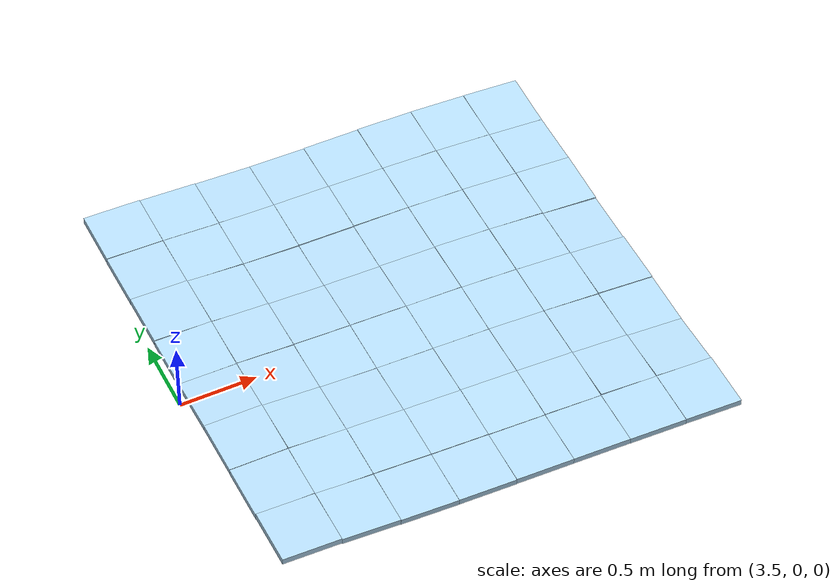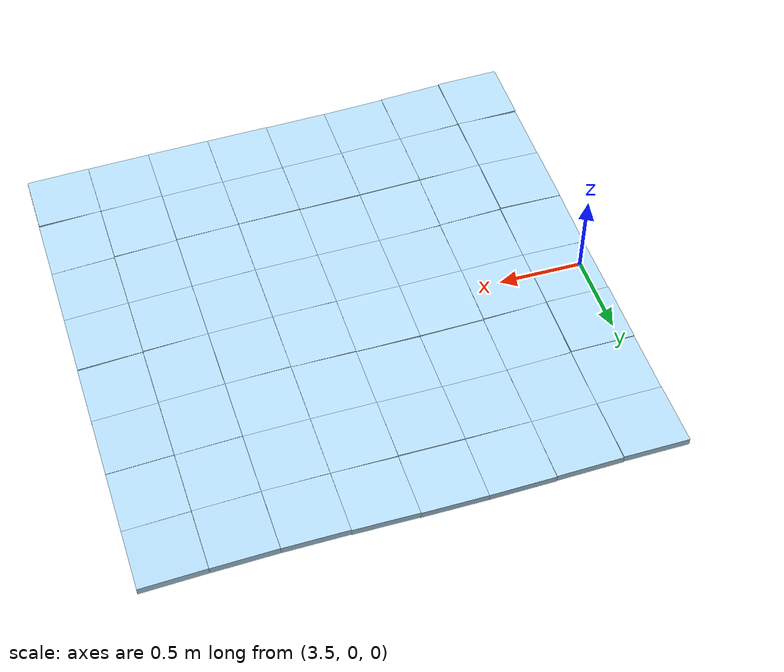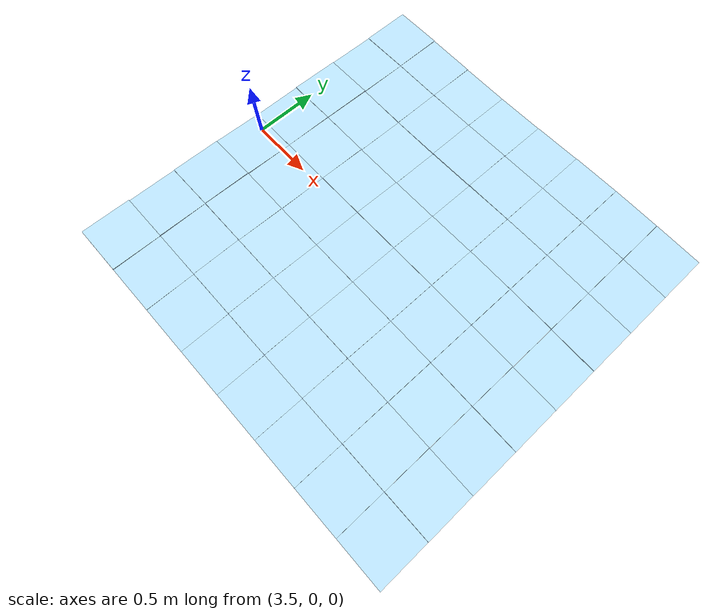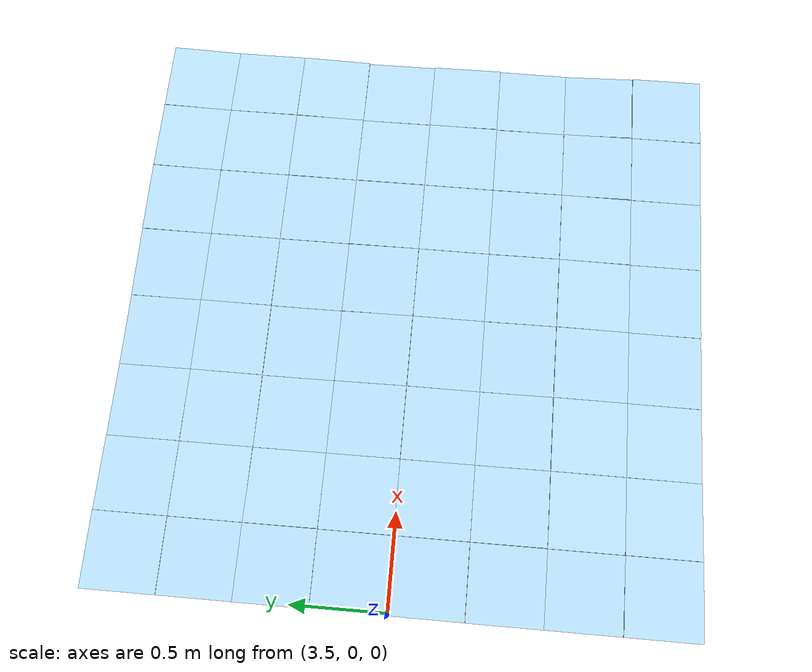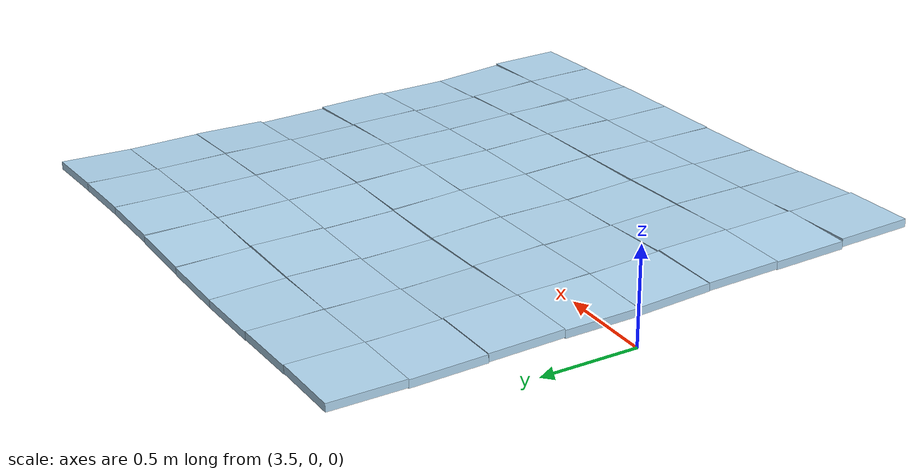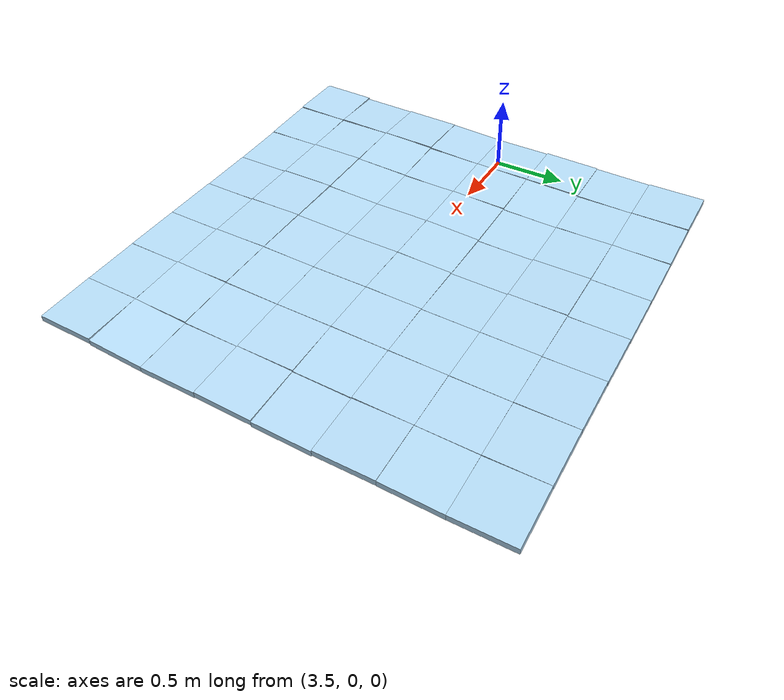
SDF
<sdf version="1.8">
 <world name="default">
  <model name="slip_patch_0">
   <static>true</static>
   <link name="t_0_0">
    <pose>3.6875 -1.3125 0.2237 -0.02698 0.03791 0</pose>
    <collision name="collision">
     <geometry><box><size>0.3750 0.3750 0.04</size></box></geometry>
     <surface><friction><ode><mu>0.3</mu><mu2>0.3</mu2></ode></friction></surface>
    </collision>
    <visual name="visual">
     <geometry><box><size>0.3750 0.3750 0.04</size></box></geometry>
     <material>
      <ambient>0.62 0.76 0.85 1</ambient>
      <diffuse>0.70 0.85 0.95 1</diffuse>
      <specular>0.9 0.9 0.9 1</specular>
     </material>
    </visual>
   </link>
   <link name="t_0_1">
    <pose>3.6875 -0.9375 0.2101 -0.02581 -0.00199 0</pose>
    <collision name="collision">
     <geometry><box><size>0.3750 0.3750 0.04</size></box></geometry>
     <surface><friction><ode><mu>0.3</mu><mu2>0.3</mu2></ode></friction></surface>
    </collision>
    <visual name="visual">
     <geometry><box><size>0.3750 0.3750 0.04</size></box></geometry>
     <material>
      <ambient>0.62 0.76 0.85 1</ambient>
      <diffuse>0.70 0.85 0.95 1</diffuse>
      <specular>0.9 0.9 0.9 1</specular>
     </material>
    </visual>
   </link>
   <link name="t_0_2">
    <pose>3.6875 -0.5625 0.2039 -0.02700 -0.00079 0</pose>
    <collision name="collision">
     <geometry><box><size>0.3750 0.3750 0.04</size></box></geometry>
     <surface><friction><ode><mu>0.3</mu><mu2>0.3</mu2></ode></friction></surface>
    </collision>
    <visual name="visual">
     <geometry><box><size>0.3750 0.3750 0.04</size></box></geometry>
     <material>
      <ambient>0.62 0.76 0.85 1</ambient>
      <diffuse>0.70 0.85 0.95 1</diffuse>
      <specular>0.9 0.9 0.9 1</specular>
     </material>
    </visual>
   </link>
   <link name="t_0_3">
    <pose>3.6875 -0.1875 0.1853 -0.05277 0.00854 0</pose>
    <collision name="collision">
     <geometry><box><size>0.3750 0.3750 0.04</size></box></geometry>
     <surface><friction><ode><mu>0.3</mu><mu2>0.3</mu2></ode></friction></surface>
    </collision>
    <visual name="visual">
     <geometry><box><size>0.3750 0.3750 0.04</size></box></geometry>
     <material>
      <ambient>0.62 0.76 0.85 1</ambient>
      <diffuse>0.70 0.85 0.95 1</diffuse>
      <specular>0.9 0.9 0.9 1</specular>
     </material>
    </visual>
   </link>
   <link name="t_0_4">
    <pose>3.6875 0.1875 0.1733 -0.01191 0.00159 0</pose>
    <collision name="collision">
     <geometry><box><size>0.3750 0.3750 0.04</size></box></geometry>
     <surface><friction><ode><mu>0.3</mu><mu2>0.3</mu2></ode></friction></surface>
    </collision>
    <visual name="visual">
     <geometry><box><size>0.3750 0.3750 0.04</size></box></geometry>
     <material>
      <ambient>0.62 0.76 0.85 1</ambient>
      <diffuse>0.70 0.85 0.95 1</diffuse>
      <specular>0.9 0.9 0.9 1</specular>
     </material>
    </visual>
   </link>
   <link name="t_0_5">
    <pose>3.6875 0.5625 0.1686 -0.02680 0.02184 0</pose>
    <collision name="collision">
     <geometry><box><size>0.3750 0.3750 0.04</size></box></geometry>
     <surface><friction><ode><mu>0.3</mu><mu2>0.3</mu2></ode></friction></surface>
    </collision>
    <visual name="visual">
     <geometry><box><size>0.3750 0.3750 0.04</size></box></geometry>
     <material>
      <ambient>0.62 0.76 0.85 1</ambient>
      <diffuse>0.70 0.85 0.95 1</diffuse>
      <specular>0.9 0.9 0.9 1</specular>
     </material>
    </visual>
   </link>
   <link name="t_0_6">
    <pose>3.6875 0.9375 0.1546 -0.02481 0.02184 0</pose>
    <collision name="collision">
     <geometry><box><size>0.3750 0.3750 0.04</size></box></geometry>
     <surface><friction><ode><mu>0.3</mu><mu2>0.3</mu2></ode></friction></surface>
    </collision>
    <visual name="visual">
     <geometry><box><size>0.3750 0.3750 0.04</size></box></geometry>
     <material>
      <ambient>0.62 0.76 0.85 1</ambient>
      <diffuse>0.70 0.85 0.95 1</diffuse>
      <specular>0.9 0.9 0.9 1</specular>
     </material>
    </visual>
   </link>
   <link name="t_0_7">
    <pose>3.6875 1.3125 0.1533 -0.00119 0.02601 0</pose>
    <collision name="collision">
     <geometry><box><size>0.3750 0.3750 0.04</size></box></geometry>
     <surface><friction><ode><mu>0.3</mu><mu2>0.3</mu2></ode></friction></surface>
    </collision>
    <visual name="visual">
     <geometry><box><size>0.3750 0.3750 0.04</size></box></geometry>
     <material>
      <ambient>0.62 0.76 0.85 1</ambient>
      <diffuse>0.70 0.85 0.95 1</diffuse>
      <specular>0.9 0.9 0.9 1</specular>
     </material>
    </visual>
   </link>
   <link name="t_1_0">
    <pose>4.0625 -1.3125 0.2005 -0.00990 0.06939 0</pose>
    <collision name="collision">
     <geometry><box><size>0.3750 0.3750 0.04</size></box></geometry>
     <surface><friction><ode><mu>0.3</mu><mu2>0.3</mu2></ode></friction></surface>
    </collision>
    <visual name="visual">
     <geometry><box><size>0.3750 0.3750 0.04</size></box></geometry>
     <material>
      <ambient>0.62 0.76 0.85 1</ambient>
      <diffuse>0.70 0.85 0.95 1</diffuse>
      <specular>0.9 0.9 0.9 1</specular>
     </material>
    </visual>
   </link>
   <link name="t_1_1">
    <pose>4.0625 -0.9375 0.1983 -0.00496 0.04465 0</pose>
    <collision name="collision">
     <geometry><box><size>0.3750 0.3750 0.04</size></box></geometry>
     <surface><friction><ode><mu>0.3</mu><mu2>0.3</mu2></ode></friction></surface>
    </collision>
    <visual name="visual">
     <geometry><box><size>0.3750 0.3750 0.04</size></box></geometry>
     <material>
      <ambient>0.62 0.76 0.85 1</ambient>
      <diffuse>0.70 0.85 0.95 1</diffuse>
      <specular>0.9 0.9 0.9 1</specular>
     </material>
    </visual>
   </link>
   <link name="t_1_2">
    <pose>4.0625 -0.5625 0.1890 -0.04357 0.06346 0</pose>
    <collision name="collision">
     <geometry><box><size>0.3750 0.3750 0.04</size></box></geometry>
     <surface><friction><ode><mu>0.3</mu><mu2>0.3</mu2></ode></friction></surface>
    </collision>
    <visual name="visual">
     <geometry><box><size>0.3750 0.3750 0.04</size></box></geometry>
     <material>
      <ambient>0.62 0.76 0.85 1</ambient>
      <diffuse>0.70 0.85 0.95 1</diffuse>
      <specular>0.9 0.9 0.9 1</specular>
     </material>
    </visual>
   </link>
   <link name="t_1_3">
    <pose>4.0625 -0.1875 0.1717 -0.03271 0.05258 0</pose>
    <collision name="collision">
     <geometry><box><size>0.3750 0.3750 0.04</size></box></geometry>
     <surface><friction><ode><mu>0.3</mu><mu2>0.3</mu2></ode></friction></surface>
    </collision>
    <visual name="visual">
     <geometry><box><size>0.3750 0.3750 0.04</size></box></geometry>
     <material>
      <ambient>0.62 0.76 0.85 1</ambient>
      <diffuse>0.70 0.85 0.95 1</diffuse>
      <specular>0.9 0.9 0.9 1</specular>
     </material>
    </visual>
   </link>
   <link name="t_1_4">
    <pose>4.0625 0.1875 0.1630 -0.03173 0.04762 0</pose>
    <collision name="collision">
     <geometry><box><size>0.3750 0.3750 0.04</size></box></geometry>
     <surface><friction><ode><mu>0.3</mu><mu2>0.3</mu2></ode></friction></surface>
    </collision>
    <visual name="visual">
     <geometry><box><size>0.3750 0.3750 0.04</size></box></geometry>
     <material>
      <ambient>0.62 0.76 0.85 1</ambient>
      <diffuse>0.70 0.85 0.95 1</diffuse>
      <specular>0.9 0.9 0.9 1</specular>
     </material>
    </visual>
   </link>
   <link name="t_1_5">
    <pose>4.0625 0.5625 0.1471 -0.03860 0.07236 0</pose>
    <collision name="collision">
     <geometry><box><size>0.3750 0.3750 0.04</size></box></geometry>
     <surface><friction><ode><mu>0.3</mu><mu2>0.3</mu2></ode></friction></surface>
    </collision>
    <visual name="visual">
     <geometry><box><size>0.3750 0.3750 0.04</size></box></geometry>
     <material>
      <ambient>0.62 0.76 0.85 1</ambient>
      <diffuse>0.70 0.85 0.95 1</diffuse>
      <specular>0.9 0.9 0.9 1</specular>
     </material>
    </visual>
   </link>
   <link name="t_1_6">
    <pose>4.0625 0.9375 0.1394 -0.00992 0.04960 0</pose>
    <collision name="collision">
     <geometry><box><size>0.3750 0.3750 0.04</size></box></geometry>
     <surface><friction><ode><mu>0.3</mu><mu2>0.3</mu2></ode></friction></surface>
    </collision>
    <visual name="visual">
     <geometry><box><size>0.3750 0.3750 0.04</size></box></geometry>
     <material>
      <ambient>0.62 0.76 0.85 1</ambient>
      <diffuse>0.70 0.85 0.95 1</diffuse>
      <specular>0.9 0.9 0.9 1</specular>
     </material>
    </visual>
   </link>
   <link name="t_1_7">
    <pose>4.0625 1.3125 0.1366 -0.01190 0.04861 0</pose>
    <collision name="collision">
     <geometry><box><size>0.3750 0.3750 0.04</size></box></geometry>
     <surface><friction><ode><mu>0.3</mu><mu2>0.3</mu2></ode></friction></surface>
    </collision>
    <visual name="visual">
     <geometry><box><size>0.3750 0.3750 0.04</size></box></geometry>
     <material>
      <ambient>0.62 0.76 0.85 1</ambient>
      <diffuse>0.70 0.85 0.95 1</diffuse>
      <specular>0.9 0.9 0.9 1</specular>
     </material>
    </visual>
   </link>
   <link name="t_2_0">
    <pose>4.4375 -1.3125 0.1764 0.00516 0.05495 0</pose>
    <collision name="collision">
     <geometry><box><size>0.3750 0.3750 0.04</size></box></geometry>
     <surface><friction><ode><mu>0.3</mu><mu2>0.3</mu2></ode></friction></surface>
    </collision>
    <visual name="visual">
     <geometry><box><size>0.3750 0.3750 0.04</size></box></geometry>
     <material>
      <ambient>0.62 0.76 0.85 1</ambient>
      <diffuse>0.70 0.85 0.95 1</diffuse>
      <specular>0.9 0.9 0.9 1</specular>
     </material>
    </visual>
   </link>
   <link name="t_2_1">
    <pose>4.4375 -0.9375 0.1813 -0.00496 0.04960 0</pose>
    <collision name="collision">
     <geometry><box><size>0.3750 0.3750 0.04</size></box></geometry>
     <surface><friction><ode><mu>0.3</mu><mu2>0.3</mu2></ode></friction></surface>
    </collision>
    <visual name="visual">
     <geometry><box><size>0.3750 0.3750 0.04</size></box></geometry>
     <material>
      <ambient>0.62 0.76 0.85 1</ambient>
      <diffuse>0.70 0.85 0.95 1</diffuse>
      <specular>0.9 0.9 0.9 1</specular>
     </material>
    </visual>
   </link>
   <link name="t_2_2">
    <pose>4.4375 -0.5625 0.1667 -0.05172 0.04980 0</pose>
    <collision name="collision">
     <geometry><box><size>0.3750 0.3750 0.04</size></box></geometry>
     <surface><friction><ode><mu>0.3</mu><mu2>0.3</mu2></ode></friction></surface>
    </collision>
    <visual name="visual">
     <geometry><box><size>0.3750 0.3750 0.04</size></box></geometry>
     <material>
      <ambient>0.62 0.76 0.85 1</ambient>
      <diffuse>0.70 0.85 0.95 1</diffuse>
      <specular>0.9 0.9 0.9 1</specular>
     </material>
    </visual>
   </link>
   <link name="t_2_3">
    <pose>4.4375 -0.1875 0.1548 -0.01052 0.03434 0</pose>
    <collision name="collision">
     <geometry><box><size>0.3750 0.3750 0.04</size></box></geometry>
     <surface><friction><ode><mu>0.3</mu><mu2>0.3</mu2></ode></friction></surface>
    </collision>
    <visual name="visual">
     <geometry><box><size>0.3750 0.3750 0.04</size></box></geometry>
     <material>
      <ambient>0.62 0.76 0.85 1</ambient>
      <diffuse>0.70 0.85 0.95 1</diffuse>
      <specular>0.9 0.9 0.9 1</specular>
     </material>
    </visual>
   </link>
   <link name="t_2_4">
    <pose>4.4375 0.1875 0.1459 -0.04957 0.03672 0</pose>
    <collision name="collision">
     <geometry><box><size>0.3750 0.3750 0.04</size></box></geometry>
     <surface><friction><ode><mu>0.3</mu><mu2>0.3</mu2></ode></friction></surface>
    </collision>
    <visual name="visual">
     <geometry><box><size>0.3750 0.3750 0.04</size></box></geometry>
     <material>
      <ambient>0.62 0.76 0.85 1</ambient>
      <diffuse>0.70 0.85 0.95 1</diffuse>
      <specular>0.9 0.9 0.9 1</specular>
     </material>
    </visual>
   </link>
   <link name="t_2_5">
    <pose>4.4375 0.5625 0.1252 -0.02936 0.04267 0</pose>
    <collision name="collision">
     <geometry><box><size>0.3750 0.3750 0.04</size></box></geometry>
     <surface><friction><ode><mu>0.3</mu><mu2>0.3</mu2></ode></friction></surface>
    </collision>
    <visual name="visual">
     <geometry><box><size>0.3750 0.3750 0.04</size></box></geometry>
     <material>
      <ambient>0.62 0.76 0.85 1</ambient>
      <diffuse>0.70 0.85 0.95 1</diffuse>
      <specular>0.9 0.9 0.9 1</specular>
     </material>
    </visual>
   </link>
   <link name="t_2_6">
    <pose>4.4375 0.9375 0.1251 0.00496 0.02581 0</pose>
    <collision name="collision">
     <geometry><box><size>0.3750 0.3750 0.04</size></box></geometry>
     <surface><friction><ode><mu>0.3</mu><mu2>0.3</mu2></ode></friction></surface>
    </collision>
    <visual name="visual">
     <geometry><box><size>0.3750 0.3750 0.04</size></box></geometry>
     <material>
      <ambient>0.62 0.76 0.85 1</ambient>
      <diffuse>0.70 0.85 0.95 1</diffuse>
      <specular>0.9 0.9 0.9 1</specular>
     </material>
    </visual>
   </link>
   <link name="t_2_7">
    <pose>4.4375 1.3125 0.1189 -0.02817 0.04009 0</pose>
    <collision name="collision">
     <geometry><box><size>0.3750 0.3750 0.04</size></box></geometry>
     <surface><friction><ode><mu>0.3</mu><mu2>0.3</mu2></ode></friction></surface>
    </collision>
    <visual name="visual">
     <geometry><box><size>0.3750 0.3750 0.04</size></box></geometry>
     <material>
      <ambient>0.62 0.76 0.85 1</ambient>
      <diffuse>0.70 0.85 0.95 1</diffuse>
      <specular>0.9 0.9 0.9 1</specular>
     </material>
    </visual>
   </link>
   <link name="t_3_0">
    <pose>4.8125 -1.3125 0.1592 -0.00000 0.03870 0</pose>
    <collision name="collision">
     <geometry><box><size>0.3750 0.3750 0.04</size></box></geometry>
     <surface><friction><ode><mu>0.3</mu><mu2>0.3</mu2></ode></friction></surface>
    </collision>
    <visual name="visual">
     <geometry><box><size>0.3750 0.3750 0.04</size></box></geometry>
     <material>
      <ambient>0.62 0.76 0.85 1</ambient>
      <diffuse>0.70 0.85 0.95 1</diffuse>
      <specular>0.9 0.9 0.9 1</specular>
     </material>
    </visual>
   </link>
   <link name="t_3_1">
    <pose>4.8125 -0.9375 0.1639 -0.00099 0.04069 0</pose>
    <collision name="collision">
     <geometry><box><size>0.3750 0.3750 0.04</size></box></geometry>
     <surface><friction><ode><mu>0.3</mu><mu2>0.3</mu2></ode></friction></surface>
    </collision>
    <visual name="visual">
     <geometry><box><size>0.3750 0.3750 0.04</size></box></geometry>
     <material>
      <ambient>0.62 0.76 0.85 1</ambient>
      <diffuse>0.70 0.85 0.95 1</diffuse>
      <specular>0.9 0.9 0.9 1</specular>
     </material>
    </visual>
   </link>
   <link name="t_3_2">
    <pose>4.8125 -0.5625 0.1520 -0.03710 0.02938 0</pose>
    <collision name="collision">
     <geometry><box><size>0.3750 0.3750 0.04</size></box></geometry>
     <surface><friction><ode><mu>0.3</mu><mu2>0.3</mu2></ode></friction></surface>
    </collision>
    <visual name="visual">
     <geometry><box><size>0.3750 0.3750 0.04</size></box></geometry>
     <material>
      <ambient>0.62 0.76 0.85 1</ambient>
      <diffuse>0.70 0.85 0.95 1</diffuse>
      <specular>0.9 0.9 0.9 1</specular>
     </material>
    </visual>
   </link>
   <link name="t_3_3">
    <pose>4.8125 -0.1875 0.1447 -0.00615 0.02402 0</pose>
    <collision name="collision">
     <geometry><box><size>0.3750 0.3750 0.04</size></box></geometry>
     <surface><friction><ode><mu>0.3</mu><mu2>0.3</mu2></ode></friction></surface>
    </collision>
    <visual name="visual">
     <geometry><box><size>0.3750 0.3750 0.04</size></box></geometry>
     <material>
      <ambient>0.62 0.76 0.85 1</ambient>
      <diffuse>0.70 0.85 0.95 1</diffuse>
      <specular>0.9 0.9 0.9 1</specular>
     </material>
    </visual>
   </link>
   <link name="t_3_4">
    <pose>4.8125 0.1875 0.1353 -0.05197 0.02323 0</pose>
    <collision name="collision">
     <geometry><box><size>0.3750 0.3750 0.04</size></box></geometry>
     <surface><friction><ode><mu>0.3</mu><mu2>0.3</mu2></ode></friction></surface>
    </collision>
    <visual name="visual">
     <geometry><box><size>0.3750 0.3750 0.04</size></box></geometry>
     <material>
      <ambient>0.62 0.76 0.85 1</ambient>
      <diffuse>0.70 0.85 0.95 1</diffuse>
      <specular>0.9 0.9 0.9 1</specular>
     </material>
    </visual>
   </link>
   <link name="t_3_5">
    <pose>4.8125 0.5625 0.1161 -0.01926 0.00735 0</pose>
    <collision name="collision">
     <geometry><box><size>0.3750 0.3750 0.04</size></box></geometry>
     <surface><friction><ode><mu>0.3</mu><mu2>0.3</mu2></ode></friction></surface>
    </collision>
    <visual name="visual">
     <geometry><box><size>0.3750 0.3750 0.04</size></box></geometry>
     <material>
      <ambient>0.62 0.76 0.85 1</ambient>
      <diffuse>0.70 0.85 0.95 1</diffuse>
      <specular>0.9 0.9 0.9 1</specular>
     </material>
    </visual>
   </link>
   <link name="t_3_6">
    <pose>4.8125 0.9375 0.1195 0.00099 0.00993 0</pose>
    <collision name="collision">
     <geometry><box><size>0.3750 0.3750 0.04</size></box></geometry>
     <surface><friction><ode><mu>0.3</mu><mu2>0.3</mu2></ode></friction></surface>
    </collision>
    <visual name="visual">
     <geometry><box><size>0.3750 0.3750 0.04</size></box></geometry>
     <material>
      <ambient>0.62 0.76 0.85 1</ambient>
      <diffuse>0.70 0.85 0.95 1</diffuse>
      <specular>0.9 0.9 0.9 1</specular>
     </material>
    </visual>
   </link>
   <link name="t_3_7">
    <pose>4.8125 1.3125 0.1085 -0.02581 0.01489 0</pose>
    <collision name="collision">
     <geometry><box><size>0.3750 0.3750 0.04</size></box></geometry>
     <surface><friction><ode><mu>0.3</mu><mu2>0.3</mu2></ode></friction></surface>
    </collision>
    <visual name="visual">
     <geometry><box><size>0.3750 0.3750 0.04</size></box></geometry>
     <material>
      <ambient>0.62 0.76 0.85 1</ambient>
      <diffuse>0.70 0.85 0.95 1</diffuse>
      <specular>0.9 0.9 0.9 1</specular>
     </material>
    </visual>
   </link>
   <link name="t_4_0">
    <pose>5.1875 -1.3125 0.1458 -0.01290 0.03474 0</pose>
    <collision name="collision">
     <geometry><box><size>0.3750 0.3750 0.04</size></box></geometry>
     <surface><friction><ode><mu>0.3</mu><mu2>0.3</mu2></ode></friction></surface>
    </collision>
    <visual name="visual">
     <geometry><box><size>0.3750 0.3750 0.04</size></box></geometry>
     <material>
      <ambient>0.62 0.76 0.85 1</ambient>
      <diffuse>0.70 0.85 0.95 1</diffuse>
      <specular>0.9 0.9 0.9 1</specular>
     </material>
    </visual>
   </link>
   <link name="t_4_1">
    <pose>5.1875 -0.9375 0.1490 0.00992 0.03970 0</pose>
    <collision name="collision">
     <geometry><box><size>0.3750 0.3750 0.04</size></box></geometry>
     <surface><friction><ode><mu>0.3</mu><mu2>0.3</mu2></ode></friction></surface>
    </collision>
    <visual name="visual">
     <geometry><box><size>0.3750 0.3750 0.04</size></box></geometry>
     <material>
      <ambient>0.62 0.76 0.85 1</ambient>
      <diffuse>0.70 0.85 0.95 1</diffuse>
      <specular>0.9 0.9 0.9 1</specular>
     </material>
    </visual>
   </link>
   <link name="t_4_2">
    <pose>5.1875 -0.5625 0.1422 -0.03214 0.03137 0</pose>
    <collision name="collision">
     <geometry><box><size>0.3750 0.3750 0.04</size></box></geometry>
     <surface><friction><ode><mu>0.3</mu><mu2>0.3</mu2></ode></friction></surface>
    </collision>
    <visual name="visual">
     <geometry><box><size>0.3750 0.3750 0.04</size></box></geometry>
     <material>
      <ambient>0.62 0.76 0.85 1</ambient>
      <diffuse>0.70 0.85 0.95 1</diffuse>
      <specular>0.9 0.9 0.9 1</specular>
     </material>
    </visual>
   </link>
   <link name="t_4_3">
    <pose>5.1875 -0.1875 0.1354 -0.00596 0.02760 0</pose>
    <collision name="collision">
     <geometry><box><size>0.3750 0.3750 0.04</size></box></geometry>
     <surface><friction><ode><mu>0.3</mu><mu2>0.3</mu2></ode></friction></surface>
    </collision>
    <visual name="visual">
     <geometry><box><size>0.3750 0.3750 0.04</size></box></geometry>
     <material>
      <ambient>0.62 0.76 0.85 1</ambient>
      <diffuse>0.70 0.85 0.95 1</diffuse>
      <specular>0.9 0.9 0.9 1</specular>
     </material>
    </visual>
   </link>
   <link name="t_4_4">
    <pose>5.1875 0.1875 0.1283 -0.03374 0.01906 0</pose>
    <collision name="collision">
     <geometry><box><size>0.3750 0.3750 0.04</size></box></geometry>
     <surface><friction><ode><mu>0.3</mu><mu2>0.3</mu2></ode></friction></surface>
    </collision>
    <visual name="visual">
     <geometry><box><size>0.3750 0.3750 0.04</size></box></geometry>
     <material>
      <ambient>0.62 0.76 0.85 1</ambient>
      <diffuse>0.70 0.85 0.95 1</diffuse>
      <specular>0.9 0.9 0.9 1</specular>
     </material>
    </visual>
   </link>
   <link name="t_4_5">
    <pose>5.1875 0.5625 0.1158 -0.01569 0.00199 0</pose>
    <collision name="collision">
     <geometry><box><size>0.3750 0.3750 0.04</size></box></geometry>
     <surface><friction><ode><mu>0.3</mu><mu2>0.3</mu2></ode></friction></surface>
    </collision>
    <visual name="visual">
     <geometry><box><size>0.3750 0.3750 0.04</size></box></geometry>
     <material>
      <ambient>0.62 0.76 0.85 1</ambient>
      <diffuse>0.70 0.85 0.95 1</diffuse>
      <specular>0.9 0.9 0.9 1</specular>
     </material>
    </visual>
   </link>
   <link name="t_4_6">
    <pose>5.1875 0.9375 0.1143 -0.01390 0.01589 0</pose>
    <collision name="collision">
     <geometry><box><size>0.3750 0.3750 0.04</size></box></geometry>
     <surface><friction><ode><mu>0.3</mu><mu2>0.3</mu2></ode></friction></surface>
    </collision>
    <visual name="visual">
     <geometry><box><size>0.3750 0.3750 0.04</size></box></geometry>
     <material>
      <ambient>0.62 0.76 0.85 1</ambient>
      <diffuse>0.70 0.85 0.95 1</diffuse>
      <specular>0.9 0.9 0.9 1</specular>
     </material>
    </visual>
   </link>
   <link name="t_4_7">
    <pose>5.1875 1.3125 0.1062 -0.01092 0.00139 0</pose>
    <collision name="collision">
     <geometry><box><size>0.3750 0.3750 0.04</size></box></geometry>
     <surface><friction><ode><mu>0.3</mu><mu2>0.3</mu2></ode></friction></surface>
    </collision>
    <visual name="visual">
     <geometry><box><size>0.3750 0.3750 0.04</size></box></geometry>
     <material>
      <ambient>0.62 0.76 0.85 1</ambient>
      <diffuse>0.70 0.85 0.95 1</diffuse>
      <specular>0.9 0.9 0.9 1</specular>
     </material>
    </visual>
   </link>
   <link name="t_5_0">
    <pose>5.5625 -1.3125 0.1328 -0.01369 0.03593 0</pose>
    <collision name="collision">
     <geometry><box><size>0.3750 0.3750 0.04</size></box></geometry>
     <surface><friction><ode><mu>0.3</mu><mu2>0.3</mu2></ode></friction></surface>
    </collision>
    <visual name="visual">
     <geometry><box><size>0.3750 0.3750 0.04</size></box></geometry>
     <material>
      <ambient>0.62 0.76 0.85 1</ambient>
      <diffuse>0.70 0.85 0.95 1</diffuse>
      <specular>0.9 0.9 0.9 1</specular>
     </material>
    </visual>
   </link>
   <link name="t_5_1">
    <pose>5.5625 -0.9375 0.1332 -0.00099 0.04762 0</pose>
    <collision name="collision">
     <geometry><box><size>0.3750 0.3750 0.04</size></box></geometry>
     <surface><friction><ode><mu>0.3</mu><mu2>0.3</mu2></ode></friction></surface>
    </collision>
    <visual name="visual">
     <geometry><box><size>0.3750 0.3750 0.04</size></box></geometry>
     <material>
      <ambient>0.62 0.76 0.85 1</ambient>
      <diffuse>0.70 0.85 0.95 1</diffuse>
      <specular>0.9 0.9 0.9 1</specular>
     </material>
    </visual>
   </link>
   <link name="t_5_2">
    <pose>5.5625 -0.5625 0.1267 -0.02597 0.05357 0</pose>
    <collision name="collision">
     <geometry><box><size>0.3750 0.3750 0.04</size></box></geometry>
     <surface><friction><ode><mu>0.3</mu><mu2>0.3</mu2></ode></friction></surface>
    </collision>
    <visual name="visual">
     <geometry><box><size>0.3750 0.3750 0.04</size></box></geometry>
     <material>
      <ambient>0.62 0.76 0.85 1</ambient>
      <diffuse>0.70 0.85 0.95 1</diffuse>
      <specular>0.9 0.9 0.9 1</specular>
     </material>
    </visual>
   </link>
   <link name="t_5_3">
    <pose>5.5625 -0.1875 0.1208 -0.00595 0.05000 0</pose>
    <collision name="collision">
     <geometry><box><size>0.3750 0.3750 0.04</size></box></geometry>
     <surface><friction><ode><mu>0.3</mu><mu2>0.3</mu2></ode></friction></surface>
    </collision>
    <visual name="visual">
     <geometry><box><size>0.3750 0.3750 0.04</size></box></geometry>
     <material>
      <ambient>0.62 0.76 0.85 1</ambient>
      <diffuse>0.70 0.85 0.95 1</diffuse>
      <specular>0.9 0.9 0.9 1</specular>
     </material>
    </visual>
   </link>
   <link name="t_5_4">
    <pose>5.5625 0.1875 0.1169 -0.01785 0.04762 0</pose>
    <collision name="collision">
     <geometry><box><size>0.3750 0.3750 0.04</size></box></geometry>
     <surface><friction><ode><mu>0.3</mu><mu2>0.3</mu2></ode></friction></surface>
    </collision>
    <visual name="visual">
     <geometry><box><size>0.3750 0.3750 0.04</size></box></geometry>
     <material>
      <ambient>0.62 0.76 0.85 1</ambient>
      <diffuse>0.70 0.85 0.95 1</diffuse>
      <specular>0.9 0.9 0.9 1</specular>
     </material>
    </visual>
   </link>
   <link name="t_5_5">
    <pose>5.5625 0.5625 0.1095 -0.01389 0.03394 0</pose>
    <collision name="collision">
     <geometry><box><size>0.3750 0.3750 0.04</size></box></geometry>
     <surface><friction><ode><mu>0.3</mu><mu2>0.3</mu2></ode></friction></surface>
    </collision>
    <visual name="visual">
     <geometry><box><size>0.3750 0.3750 0.04</size></box></geometry>
     <material>
      <ambient>0.62 0.76 0.85 1</ambient>
      <diffuse>0.70 0.85 0.95 1</diffuse>
      <specular>0.9 0.9 0.9 1</specular>
     </material>
    </visual>
   </link>
   <link name="t_5_6">
    <pose>5.5625 0.9375 0.1056 -0.00992 0.03275 0</pose>
    <collision name="collision">
     <geometry><box><size>0.3750 0.3750 0.04</size></box></geometry>
     <surface><friction><ode><mu>0.3</mu><mu2>0.3</mu2></ode></friction></surface>
    </collision>
    <visual name="visual">
     <geometry><box><size>0.3750 0.3750 0.04</size></box></geometry>
     <material>
      <ambient>0.62 0.76 0.85 1</ambient>
      <diffuse>0.70 0.85 0.95 1</diffuse>
      <specular>0.9 0.9 0.9 1</specular>
     </material>
    </visual>
   </link>
   <link name="t_5_7">
    <pose>5.5625 1.3125 0.1038 0.00377 0.01986 0</pose>
    <collision name="collision">
     <geometry><box><size>0.3750 0.3750 0.04</size></box></geometry>
     <surface><friction><ode><mu>0.3</mu><mu2>0.3</mu2></ode></friction></surface>
    </collision>
    <visual name="visual">
     <geometry><box><size>0.3750 0.3750 0.04</size></box></geometry>
     <material>
      <ambient>0.62 0.76 0.85 1</ambient>
      <diffuse>0.70 0.85 0.95 1</diffuse>
      <specular>0.9 0.9 0.9 1</specular>
     </material>
    </visual>
   </link>
   <link name="t_6_0">
    <pose>5.9375 -1.3125 0.1183 -0.00694 0.04168 0</pose>
    <collision name="collision">
     <geometry><box><size>0.3750 0.3750 0.04</size></box></geometry>
     <surface><friction><ode><mu>0.3</mu><mu2>0.3</mu2></ode></friction></surface>
    </collision>
    <visual name="visual">
     <geometry><box><size>0.3750 0.3750 0.04</size></box></geometry>
     <material>
      <ambient>0.62 0.76 0.85 1</ambient>
      <diffuse>0.70 0.85 0.95 1</diffuse>
      <specular>0.9 0.9 0.9 1</specular>
     </material>
    </visual>
   </link>
   <link name="t_6_1">
    <pose>5.9375 -0.9375 0.1130 -0.03467 0.06445 0</pose>
    <collision name="collision">
     <geometry><box><size>0.3750 0.3750 0.04</size></box></geometry>
     <surface><friction><ode><mu>0.3</mu><mu2>0.3</mu2></ode></friction></surface>
    </collision>
    <visual name="visual">
     <geometry><box><size>0.3750 0.3750 0.04</size></box></geometry>
     <material>
      <ambient>0.62 0.76 0.85 1</ambient>
      <diffuse>0.70 0.85 0.95 1</diffuse>
      <specular>0.9 0.9 0.9 1</specular>
     </material>
    </visual>
   </link>
   <link name="t_6_2">
    <pose>5.9375 -0.5625 0.1009 -0.01880 0.08025 0</pose>
    <collision name="collision">
     <geometry><box><size>0.3750 0.3750 0.04</size></box></geometry>
     <surface><friction><ode><mu>0.3</mu><mu2>0.3</mu2></ode></friction></surface>
    </collision>
    <visual name="visual">
     <geometry><box><size>0.3750 0.3750 0.04</size></box></geometry>
     <material>
      <ambient>0.62 0.76 0.85 1</ambient>
      <diffuse>0.70 0.85 0.95 1</diffuse>
      <specular>0.9 0.9 0.9 1</specular>
     </material>
    </visual>
   </link>
   <link name="t_6_3">
    <pose>5.9375 -0.1875 0.0990 -0.00793 0.06544 0</pose>
    <collision name="collision">
     <geometry><box><size>0.3750 0.3750 0.04</size></box></geometry>
     <surface><friction><ode><mu>0.3</mu><mu2>0.3</mu2></ode></friction></surface>
    </collision>
    <visual name="visual">
     <geometry><box><size>0.3750 0.3750 0.04</size></box></geometry>
     <material>
      <ambient>0.62 0.76 0.85 1</ambient>
      <diffuse>0.70 0.85 0.95 1</diffuse>
      <specular>0.9 0.9 0.9 1</specular>
     </material>
    </visual>
   </link>
   <link name="t_6_4">
    <pose>5.9375 0.1875 0.0925 -0.01286 0.08321 0</pose>
    <collision name="collision">
     <geometry><box><size>0.3750 0.3750 0.04</size></box></geometry>
     <surface><friction><ode><mu>0.3</mu><mu2>0.3</mu2></ode></friction></surface>
    </collision>
    <visual name="visual">
     <geometry><box><size>0.3750 0.3750 0.04</size></box></geometry>
     <material>
      <ambient>0.62 0.76 0.85 1</ambient>
      <diffuse>0.70 0.85 0.95 1</diffuse>
      <specular>0.9 0.9 0.9 1</specular>
     </material>
    </visual>
   </link>
   <link name="t_6_5">
    <pose>5.9375 0.5625 0.0913 -0.00297 0.06643 0</pose>
    <collision name="collision">
     <geometry><box><size>0.3750 0.3750 0.04</size></box></geometry>
     <surface><friction><ode><mu>0.3</mu><mu2>0.3</mu2></ode></friction></surface>
    </collision>
    <visual name="visual">
     <geometry><box><size>0.3750 0.3750 0.04</size></box></geometry>
     <material>
      <ambient>0.62 0.76 0.85 1</ambient>
      <diffuse>0.70 0.85 0.95 1</diffuse>
      <specular>0.9 0.9 0.9 1</specular>
     </material>
    </visual>
   </link>
   <link name="t_6_6">
    <pose>5.9375 0.9375 0.0882 -0.00496 0.05950 0</pose>
    <collision name="collision">
     <geometry><box><size>0.3750 0.3750 0.04</size></box></geometry>
     <surface><friction><ode><mu>0.3</mu><mu2>0.3</mu2></ode></friction></surface>
    </collision>
    <visual name="visual">
     <geometry><box><size>0.3750 0.3750 0.04</size></box></geometry>
     <material>
      <ambient>0.62 0.76 0.85 1</ambient>
      <diffuse>0.70 0.85 0.95 1</diffuse>
      <specular>0.9 0.9 0.9 1</specular>
     </material>
    </visual>
   </link>
   <link name="t_6_7">
    <pose>5.9375 1.3125 0.0894 0.01388 0.05258 0</pose>
    <collision name="collision">
     <geometry><box><size>0.3750 0.3750 0.04</size></box></geometry>
     <surface><friction><ode><mu>0.3</mu><mu2>0.3</mu2></ode></friction></surface>
    </collision>
    <visual name="visual">
     <geometry><box><size>0.3750 0.3750 0.04</size></box></geometry>
     <material>
      <ambient>0.62 0.76 0.85 1</ambient>
      <diffuse>0.70 0.85 0.95 1</diffuse>
      <specular>0.9 0.9 0.9 1</specular>
     </material>
    </visual>
   </link>
   <link name="t_7_0">
    <pose>6.3125 -1.3125 0.1022 -0.01111 0.04782 0</pose>
    <collision name="collision">
     <geometry><box><size>0.3750 0.3750 0.04</size></box></geometry>
     <surface><friction><ode><mu>0.3</mu><mu2>0.3</mu2></ode></friction></surface>
    </collision>
    <visual name="visual">
     <geometry><box><size>0.3750 0.3750 0.04</size></box></geometry>
     <material>
      <ambient>0.62 0.76 0.85 1</ambient>
      <diffuse>0.70 0.85 0.95 1</diffuse>
      <specular>0.9 0.9 0.9 1</specular>
     </material>
    </visual>
   </link>
   <link name="t_7_1">
    <pose>6.3125 -0.9375 0.0848 -0.06327 0.07729 0</pose>
    <collision name="collision">
     <geometry><box><size>0.3750 0.3750 0.04</size></box></geometry>
     <surface><friction><ode><mu>0.3</mu><mu2>0.3</mu2></ode></friction></surface>
    </collision>
    <visual name="visual">
     <geometry><box><size>0.3750 0.3750 0.04</size></box></geometry>
     <material>
      <ambient>0.62 0.76 0.85 1</ambient>
      <diffuse>0.70 0.85 0.95 1</diffuse>
      <specular>0.9 0.9 0.9 1</specular>
     </material>
    </visual>
   </link>
   <link name="t_7_2">
    <pose>6.3125 -0.5625 0.0711 -0.00495 0.07334 0</pose>
    <collision name="collision">
     <geometry><box><size>0.3750 0.3750 0.04</size></box></geometry>
     <surface><friction><ode><mu>0.3</mu><mu2>0.3</mu2></ode></friction></surface>
    </collision>
    <visual name="visual">
     <geometry><box><size>0.3750 0.3750 0.04</size></box></geometry>
     <material>
      <ambient>0.62 0.76 0.85 1</ambient>
      <diffuse>0.70 0.85 0.95 1</diffuse>
      <specular>0.9 0.9 0.9 1</specular>
     </material>
    </visual>
   </link>
   <link name="t_7_3">
    <pose>6.3125 -0.1875 0.0712 -0.02336 0.07532 0</pose>
    <collision name="collision">
     <geometry><box><size>0.3750 0.3750 0.04</size></box></geometry>
     <surface><friction><ode><mu>0.3</mu><mu2>0.3</mu2></ode></friction></surface>
    </collision>
    <visual name="visual">
     <geometry><box><size>0.3750 0.3750 0.04</size></box></geometry>
     <material>
      <ambient>0.62 0.76 0.85 1</ambient>
      <diffuse>0.70 0.85 0.95 1</diffuse>
      <specular>0.9 0.9 0.9 1</specular>
     </material>
    </visual>
   </link>
   <link name="t_7_4">
    <pose>6.3125 0.1875 0.0575 -0.01740 0.09129 0</pose>
    <collision name="collision">
     <geometry><box><size>0.3750 0.3750 0.04</size></box></geometry>
     <surface><friction><ode><mu>0.3</mu><mu2>0.3</mu2></ode></friction></surface>
    </collision>
    <visual name="visual">
     <geometry><box><size>0.3750 0.3750 0.04</size></box></geometry>
     <material>
      <ambient>0.62 0.76 0.85 1</ambient>
      <diffuse>0.70 0.85 0.95 1</diffuse>
      <specular>0.9 0.9 0.9 1</specular>
     </material>
    </visual>
   </link>
   <link name="t_7_5">
    <pose>6.3125 0.5625 0.0637 0.01862 0.07255 0</pose>
    <collision name="collision">
     <geometry><box><size>0.3750 0.3750 0.04</size></box></geometry>
     <surface><friction><ode><mu>0.3</mu><mu2>0.3</mu2></ode></friction></surface>
    </collision>
    <visual name="visual">
     <geometry><box><size>0.3750 0.3750 0.04</size></box></geometry>
     <material>
      <ambient>0.62 0.76 0.85 1</ambient>
      <diffuse>0.70 0.85 0.95 1</diffuse>
      <specular>0.9 0.9 0.9 1</specular>
     </material>
    </visual>
   </link>
   <link name="t_7_6">
    <pose>6.3125 0.9375 0.0631 -0.01188 0.07433 0</pose>
    <collision name="collision">
     <geometry><box><size>0.3750 0.3750 0.04</size></box></geometry>
     <surface><friction><ode><mu>0.3</mu><mu2>0.3</mu2></ode></friction></surface>
    </collision>
    <visual name="visual">
     <geometry><box><size>0.3750 0.3750 0.04</size></box></geometry>
     <material>
      <ambient>0.62 0.76 0.85 1</ambient>
      <diffuse>0.70 0.85 0.95 1</diffuse>
      <specular>0.9 0.9 0.9 1</specular>
     </material>
    </visual>
   </link>
   <link name="t_7_7">
    <pose>6.3125 1.3125 0.0654 0.02852 0.06840 0</pose>
    <collision name="collision">
     <geometry><box><size>0.3750 0.3750 0.04</size></box></geometry>
     <surface><friction><ode><mu>0.3</mu><mu2>0.3</mu2></ode></friction></surface>
    </collision>
    <visual name="visual">
     <geometry><box><size>0.3750 0.3750 0.04</size></box></geometry>
     <material>
      <ambient>0.62 0.76 0.85 1</ambient>
      <diffuse>0.70 0.85 0.95 1</diffuse>
      <specular>0.9 0.9 0.9 1</specular>
     </material>
    </visual>
   </link>
  </model>
 </world>
</sdf>
